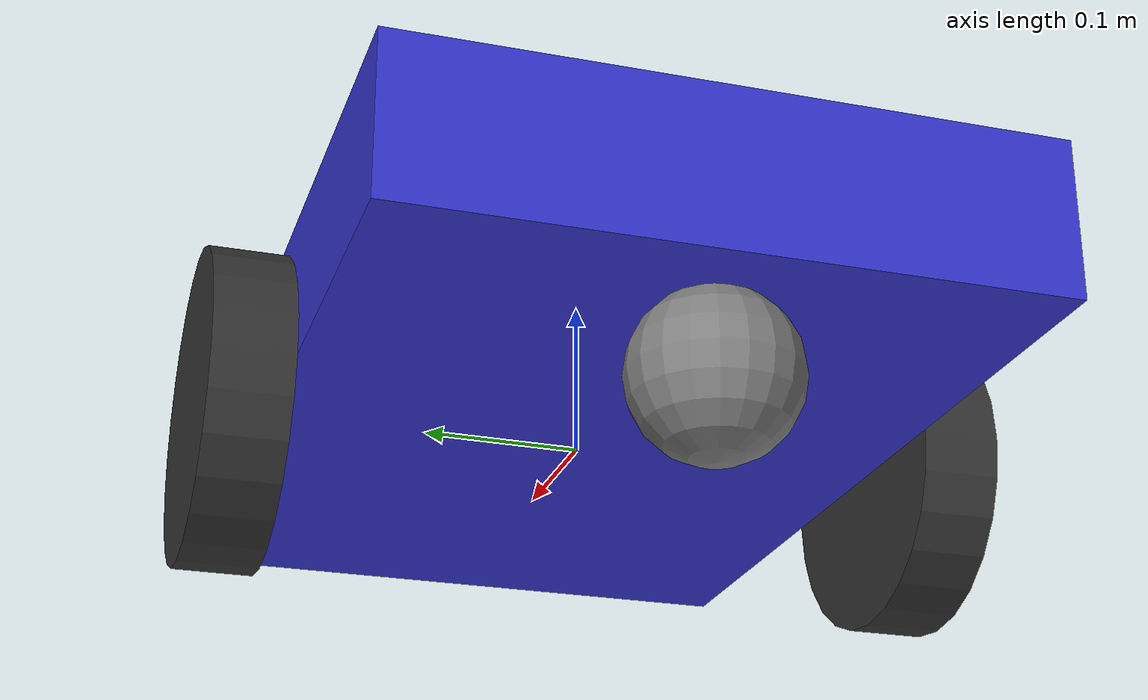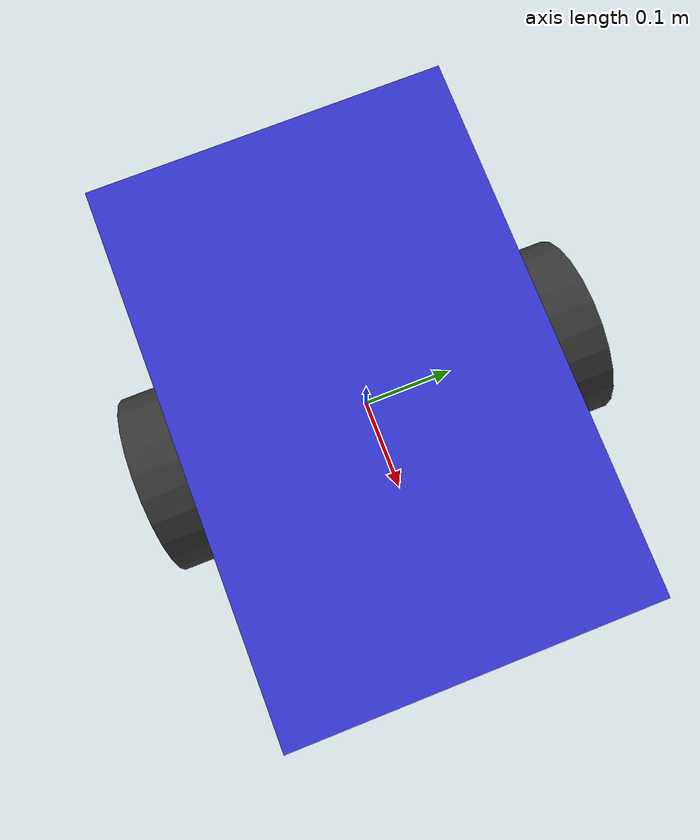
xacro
<?xml version="1.0"?>
<!--
Main robot XACRO file
Demonstrates modular XACRO organization with properties and macros
-->
<robot xmlns:xacro="http://www.ros.org/wiki/xacro" name="xacro_robot">

  <!-- Include property and macro files -->
  <xacro:include filename="$(find urdf_robot_example)/urdf/properties.xacro"/>
  <xacro:include filename="$(find urdf_robot_example)/urdf/macros.xacro"/>

  <!-- Base Link (chassis) -->
  <link name="base_link">
    <visual>
      <origin xyz="0 0 ${base_height/2}" rpy="0 0 0"/>
      <geometry>
        <box size="${base_length} ${base_width} ${base_height}"/>
      </geometry>
      <material name="robot_blue">
        <color rgba="${robot_blue}"/>
      </material>
    </visual>

    <collision>
      <origin xyz="0 0 ${base_height/2}" rpy="0 0 0"/>
      <geometry>
        <box size="${base_length} ${base_width} ${base_height}"/>
      </geometry>
    </collision>

    <xacro:box_inertia m="${base_mass}" x="${base_length}" y="${base_width}" z="${base_height}"/>
  </link>

  <!-- Use wheel macro for left and right wheels -->
  <xacro:wheel prefix="left" reflect="1"/>
  <xacro:wheel prefix="right" reflect="-1"/>

  <!-- Caster Wheel -->
  <link name="caster">
    <visual>
      <geometry>
        <sphere radius="${caster_radius}"/>
      </geometry>
      <material name="caster_grey">
        <color rgba="${caster_grey}"/>
      </material>
    </visual>

    <collision>
      <geometry>
        <sphere radius="${caster_radius}"/>
      </geometry>
    </collision>

    <xacro:sphere_inertia m="${caster_mass}" r="${caster_radius}"/>
  </link>

  <!-- Caster Joint -->
  <joint name="caster_joint" type="fixed">
    <parent link="base_link"/>
    <child link="caster"/>
    <origin xyz="${-base_length/2 + caster_radius} 0 ${-caster_radius}" rpy="0 0 0"/>
  </joint>

</robot>

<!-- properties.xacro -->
<!--
Properties file: Define robot dimensions and parameters
-->
<robot xmlns:xacro="http://www.ros.org/wiki/xacro">

  <!-- Dimensions -->
  <xacro:property name="base_length" value="0.6"/>
  <xacro:property name="base_width" value="0.4"/>
  <xacro:property name="base_height" value="0.1"/>

  <xacro:property name="wheel_radius" value="0.1"/>
  <xacro:property name="wheel_width" value="0.05"/>
  <xacro:property name="wheel_separation" value="0.45"/>

  <xacro:property name="caster_radius" value="0.05"/>

  <!-- Masses -->
  <xacro:property name="base_mass" value="10.0"/>
  <xacro:property name="wheel_mass" value="0.5"/>
  <xacro:property name="caster_mass" value="0.1"/>

  <!-- Colors -->
  <xacro:property name="robot_blue" value="0.2 0.2 0.8 1"/>
  <xacro:property name="wheel_black" value="0.2 0.2 0.2 1"/>
  <xacro:property name="caster_grey" value="0.5 0.5 0.5 1"/>

</robot>

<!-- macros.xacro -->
<!--
Macros file: Reusable components
-->
<robot xmlns:xacro="http://www.ros.org/wiki/xacro">

  <!-- Inertia Macros -->

  <!-- Box inertia -->
  <xacro:macro name="box_inertia" params="m x y z">
    <inertial>
      <mass value="${m}"/>
      <inertia ixx="${m * (y*y + z*z) / 12}" ixy="0" ixz="0"
               iyy="${m * (x*x + z*z) / 12}" iyz="0"
               izz="${m * (x*x + y*y) / 12}"/>
    </inertial>
  </xacro:macro>

  <!-- Cylinder inertia -->
  <xacro:macro name="cylinder_inertia" params="m r h">
    <inertial>
      <mass value="${m}"/>
      <inertia ixx="${m * (3*r*r + h*h) / 12}" ixy="0" ixz="0"
               iyy="${m * (3*r*r + h*h) / 12}" iyz="0"
               izz="${m * r * r / 2}"/>
    </inertial>
  </xacro:macro>

  <!-- Sphere inertia -->
  <xacro:macro name="sphere_inertia" params="m r">
    <inertial>
      <mass value="${m}"/>
      <inertia ixx="${2 * m * r * r / 5}" ixy="0" ixz="0"
               iyy="${2 * m * r * r / 5}" iyz="0"
               izz="${2 * m * r * r / 5}"/>
    </inertial>
  </xacro:macro>

  <!-- Wheel Macro -->
  <xacro:macro name="wheel" params="prefix reflect">

    <!-- Wheel Link -->
    <link name="${prefix}_wheel">
      <visual>
        <origin xyz="0 0 0" rpy="${pi/2} 0 0"/>
        <geometry>
          <cylinder radius="${wheel_radius}" length="${wheel_width}"/>
        </geometry>
        <material name="wheel_black">
          <color rgba="${wheel_black}"/>
        </material>
      </visual>

      <collision>
        <origin xyz="0 0 0" rpy="${pi/2} 0 0"/>
        <geometry>
          <cylinder radius="${wheel_radius}" length="${wheel_width}"/>
        </geometry>
      </collision>

      <xacro:cylinder_inertia m="${wheel_mass}" r="${wheel_radius}" h="${wheel_width}"/>
    </link>

    <!-- Wheel Joint -->
    <joint name="${prefix}_wheel_joint" type="continuous">
      <parent link="base_link"/>
      <child link="${prefix}_wheel"/>
      <origin xyz="0 ${reflect * wheel_separation / 2} 0" rpy="0 0 0"/>
      <axis xyz="0 1 0"/>
    </joint>

  </xacro:macro>

</robot>
